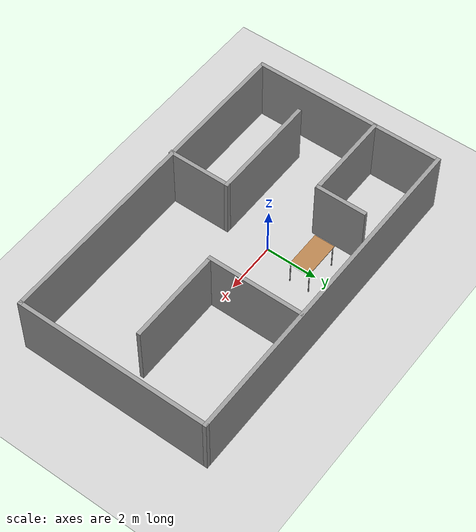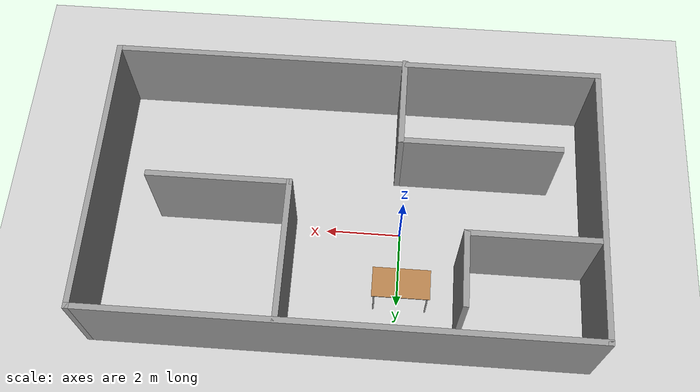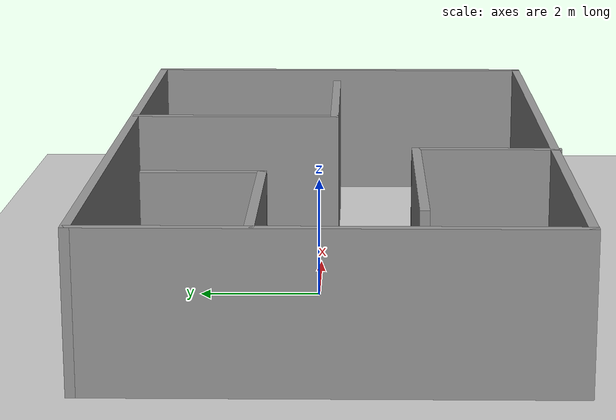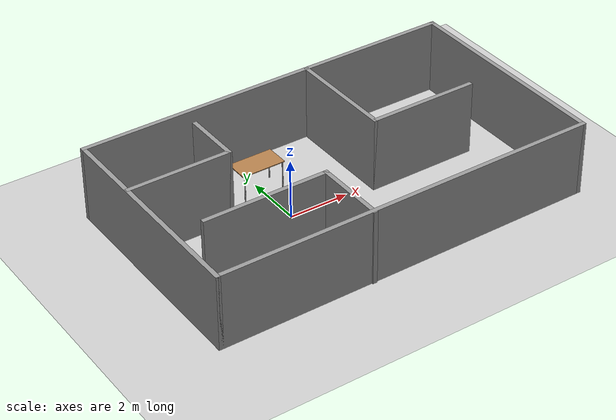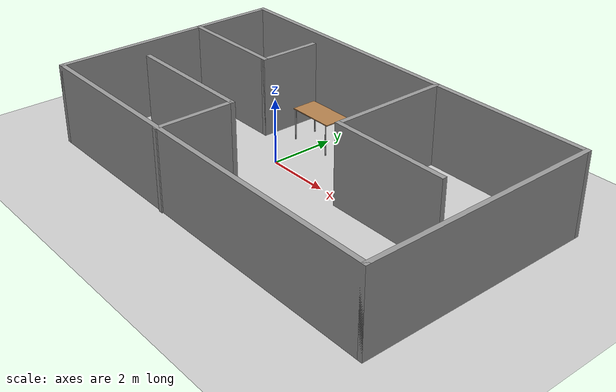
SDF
<sdf version="1.7">
 <world name="default">
  <light name="sun" type="directional">
   <pose>0 0 10 0 -0 0</pose>
   <diffuse>0.8 0.8 0.8 1</diffuse>
   <specular>0.2 0.2 0.2 1</specular>
   <attenuation>
    <range>1000</range>
    <constant>0.9</constant>
    <linear>0.01</linear>
    <quadratic>0.001</quadratic>
   </attenuation>
   <direction>-0.5 0.1 -0.9</direction>
   <spot><inner_angle>0</inner_angle><outer_angle>0</outer_angle><falloff>0</falloff></spot>
  </light>
  <model name="ground_plane">
   <static>1</static>
   <link name="link">
    <collision name="collision">
     <geometry><plane><normal>0 0 1</normal><size>100 100</size></plane></geometry>
     <surface><friction><ode><mu>100</mu><mu2>50</mu2></ode></friction></surface>
    </collision>
    <visual name="visual">
     <cast_shadows>0</cast_shadows>
     <geometry><plane><normal>0 0 1</normal><size>100 100</size></plane></geometry>
     <material>
      <script><uri>file://media/materials/scripts/gazebo.material</uri><name>Gazebo/Grey</name></script>
     </material>
    </visual>
   </link>
  </model>
  <gravity>0 0 -9.8</gravity>
  <magnetic_field>6e-06 2.3e-05 -4.2e-05</magnetic_field>
  <atmosphere type="adiabatic"/>
  <physics type="ode">
   <max_step_size>0.001</max_step_size>
   <real_time_factor>1</real_time_factor>
   <real_time_update_rate>1000</real_time_update_rate>
  </physics>
  <scene><ambient>0.4 0.4 0.4 1</ambient><background>0.7 0.7 0.7 1</background><shadows>1</shadows></scene>
  <audio><device>default</device></audio>
  <spherical_coordinates>
   <surface_model>EARTH_WGS84</surface_model>
   <latitude_deg>0</latitude_deg>
   <longitude_deg>0</longitude_deg>
   <elevation>0</elevation>
   <heading_deg>0</heading_deg>
  </spherical_coordinates>
  <model name="room">
   <pose>1.45633 -0.127533 0 0 -0 0</pose>
   <link name="Wall_0">
    <collision name="Wall_0_Collision">
     <geometry><box><size>7.5 0.15 2.5</size></box></geometry>
     <pose>0 0 1.25 0 -0 0</pose>
    </collision>
    <visual name="Wall_0_Visual">
     <pose>0 0 1.25 0 -0 0</pose>
     <geometry><box><size>7.5 0.15 2.5</size></box></geometry>
     <material>
      <script><uri>file://media/materials/scripts/gazebo.material</uri><name>Gazebo/Grey</name></script>
      <ambient>1 1 1 1</ambient>
     </material>
     <meta><layer>0</layer></meta>
    </visual>
    <pose>-6.425 -0.1225 0 0 -0 -1.5708</pose>
   </link>
   <link name="Wall_1">
    <collision name="Wall_1_Collision">
     <geometry><box><size>13 0.15 2.5</size></box></geometry>
     <pose>0 0 1.25 0 -0 0</pose>
    </collision>
    <visual name="Wall_1_Visual">
     <pose>0 0 1.25 0 -0 0</pose>
     <geometry><box><size>13 0.15 2.5</size></box></geometry>
     <material>
      <script><uri>file://media/materials/scripts/gazebo.material</uri><name>Gazebo/Grey</name></script>
      <ambient>1 1 1 1</ambient>
     </material>
     <meta><layer>0</layer></meta>
    </visual>
    <pose>0 -3.7975 0 0 -0 0</pose>
   </link>
   <link name="Wall_10">
    <collision name="Wall_10_Collision">
     <geometry><box><size>3.75 0.15 2.5</size></box></geometry>
     <pose>0 0 1.25 0 -0 0</pose>
    </collision>
    <visual name="Wall_10_Visual">
     <pose>0 0 1.25 0 -0 0</pose>
     <geometry><box><size>3.75 0.15 2.5</size></box></geometry>
     <material>
      <script><uri>file://media/materials/scripts/gazebo.material</uri><name>Gazebo/Grey</name></script>
      <ambient>1 1 1 1</ambient>
     </material>
     <meta><layer>0</layer></meta>
    </visual>
    <pose>3.255 -0.0875 0 0 -0 0</pose>
   </link>
   <link name="Wall_12">
    <collision name="Wall_12_Collision">
     <geometry><box><size>2.5 0.15 2.5</size></box></geometry>
     <pose>0 0 1.25 0 -0 0</pose>
    </collision>
    <visual name="Wall_12_Visual">
     <pose>0 0 1.25 0 -0 0</pose>
     <geometry><box><size>2.5 0.15 2.5</size></box></geometry>
     <material>
      <script><uri>file://media/materials/scripts/gazebo.material</uri><name>Gazebo/Grey</name></script>
      <ambient>1 1 1 1</ambient>
     </material>
     <meta><layer>0</layer></meta>
    </visual>
    <pose>-1.295 -2.6625 0 0 -0 1.5708</pose>
   </link>
   <link name="Wall_13">
    <collision name="Wall_13_Collision">
     <geometry><box><size>4.25 0.15 2.5</size></box></geometry>
     <pose>0 0 1.25 0 -0 0</pose>
    </collision>
    <visual name="Wall_13_Visual">
     <pose>0 0 1.25 0 -0 0</pose>
     <geometry><box><size>4.25 0.15 2.5</size></box></geometry>
     <material>
      <script><uri>file://media/materials/scripts/gazebo.material</uri><name>Gazebo/Grey</name></script>
      <ambient>1 1 1 1</ambient>
     </material>
     <meta><layer>0</layer></meta>
    </visual>
    <pose>-3.345 -1.4875 0 0 -0 3.14159</pose>
   </link>
   <link name="Wall_2">
    <collision name="Wall_2_Collision">
     <geometry><box><size>7.5 0.15 2.5</size></box></geometry>
     <pose>0 0 1.25 0 -0 0</pose>
    </collision>
    <visual name="Wall_2_Visual">
     <pose>0 0 1.25 0 -0 0</pose>
     <geometry><box><size>7.5 0.15 2.5</size></box></geometry>
     <material>
      <script><uri>file://media/materials/scripts/gazebo.material</uri><name>Gazebo/Grey</name></script>
      <ambient>1 1 1 1</ambient>
     </material>
     <meta><layer>0</layer></meta>
    </visual>
    <pose>6.425 -0.1225 0 0 -0 1.5708</pose>
   </link>
   <link name="Wall_3">
    <collision name="Wall_3_Collision">
     <geometry><box><size>13 0.15 2.5</size></box></geometry>
     <pose>0 0 1.25 0 -0 0</pose>
    </collision>
    <visual name="Wall_3_Visual">
     <pose>0 0 1.25 0 -0 0</pose>
     <geometry><box><size>13 0.15 2.5</size></box></geometry>
     <material>
      <script><uri>file://media/materials/scripts/gazebo.material</uri><name>Gazebo/Grey</name></script>
      <ambient>1 1 1 1</ambient>
     </material>
     <meta><layer>0</layer></meta>
    </visual>
    <pose>0 3.5525 0 0 -0 3.14159</pose>
   </link>
   <link name="Wall_5">
    <collision name="Wall_5_Collision">
     <geometry><box><size>3.5 0.15 2.5</size></box></geometry>
     <pose>0 0 1.25 0 -0 0</pose>
    </collision>
    <visual name="Wall_5_Visual">
     <pose>0 0 1.25 0 -0 0</pose>
     <geometry><box><size>3.5 0.15 2.5</size></box></geometry>
     <material>
      <script><uri>file://media/materials/scripts/gazebo.material</uri><name>Gazebo/Grey</name></script>
      <ambient>1 1 1 1</ambient>
     </material>
     <meta><layer>0</layer></meta>
    </visual>
    <pose>-4.71 0.9925 0 0 -0 0</pose>
   </link>
   <link name="Wall_6">
    <collision name="Wall_6_Collision">
     <geometry><box><size>2 0.15 2.5</size></box></geometry>
     <pose>0 0 1.25 0 -0 0</pose>
    </collision>
    <visual name="Wall_6_Visual">
     <pose>0 0 1.25 0 -0 0</pose>
     <geometry><box><size>2 0.15 2.5</size></box></geometry>
     <material>
      <script><uri>file://media/materials/scripts/gazebo.material</uri><name>Gazebo/Grey</name></script>
      <ambient>1 1 1 1</ambient>
     </material>
     <meta><layer>0</layer></meta>
    </visual>
    <pose>-3.035 1.9175 0 0 -0 1.5708</pose>
   </link>
   <link name="Wall_9">
    <collision name="Wall_9_Collision">
     <geometry><box><size>3.75 0.15 2.5</size></box></geometry>
     <pose>0 0 1.25 0 -0 0</pose>
    </collision>
    <visual name="Wall_9_Visual">
     <pose>0 0 1.25 0 -0 0</pose>
     <geometry><box><size>3.75 0.15 2.5</size></box></geometry>
     <material>
      <script><uri>file://media/materials/scripts/gazebo.material</uri><name>Gazebo/Grey</name></script>
      <ambient>1 1 1 1</ambient>
     </material>
     <meta><layer>0</layer></meta>
    </visual>
    <pose>1.455 1.7125 0 0 -0 -1.5708</pose>
   </link>
   <static>1</static>
  </model>
  <model name="table">
   <static>1</static>
   <link name="link">
    <collision name="surface">
     <pose>0 0 1 0 -0 0</pose>
     <geometry><box><size>1.5 0.8 0.03</size></box></geometry>
     <surface><friction><ode><mu>0.6</mu><mu2>0.6</mu2></ode></friction></surface>
    </collision>
    <visual name="visual1">
     <pose>0 0 1 0 -0 0</pose>
     <geometry><box><size>1.5 0.8 0.03</size></box></geometry>
     <material>
      <script><uri>file://media/materials/scripts/gazebo.material</uri><name>Gazebo/Wood</name></script>
     </material>
    </visual>
    <collision name="front_left_leg">
     <pose>0.68 0.38 0.5 0 -0 0</pose>
     <geometry><cylinder><radius>0.02</radius><length>1</length></cylinder></geometry>
    </collision>
    <visual name="front_left_leg">
     <pose>0.68 0.38 0.5 0 -0 0</pose>
     <geometry><cylinder><radius>0.02</radius><length>1</length></cylinder></geometry>
     <material>
      <script><uri>file://media/materials/scripts/gazebo.material</uri><name>Gazebo/Grey</name></script>
     </material>
    </visual>
    <collision name="front_right_leg">
     <pose>0.68 -0.38 0.5 0 -0 0</pose>
     <geometry><cylinder><radius>0.02</radius><length>1</length></cylinder></geometry>
    </collision>
    <visual name="front_right_leg">
     <pose>0.68 -0.38 0.5 0 -0 0</pose>
     <geometry><cylinder><radius>0.02</radius><length>1</length></cylinder></geometry>
     <material>
      <script><uri>file://media/materials/scripts/gazebo.material</uri><name>Gazebo/Grey</name></script>
     </material>
    </visual>
    <collision name="back_right_leg">
     <pose>-0.68 -0.38 0.5 0 -0 0</pose>
     <geometry><cylinder><radius>0.02</radius><length>1</length></cylinder></geometry>
    </collision>
    <visual name="back_right_leg">
     <pose>-0.68 -0.38 0.5 0 -0 0</pose>
     <geometry><cylinder><radius>0.02</radius><length>1</length></cylinder></geometry>
     <material>
      <script><uri>file://media/materials/scripts/gazebo.material</uri><name>Gazebo/Grey</name></script>
     </material>
    </visual>
    <collision name="back_left_leg">
     <pose>-0.68 0.38 0.5 0 -0 0</pose>
     <geometry><cylinder><radius>0.02</radius><length>1</length></cylinder></geometry>
    </collision>
    <visual name="back_left_leg">
     <pose>-0.68 0.38 0.5 0 -0 0</pose>
     <geometry><cylinder><radius>0.02</radius><length>1</length></cylinder></geometry>
     <material>
      <script><uri>file://media/materials/scripts/gazebo.material</uri><name>Gazebo/Grey</name></script>
     </material>
    </visual>
   </link>
   <pose>-0.073943 1.74692 0 0 -0 0</pose>
  </model>
 </world>
</sdf>
